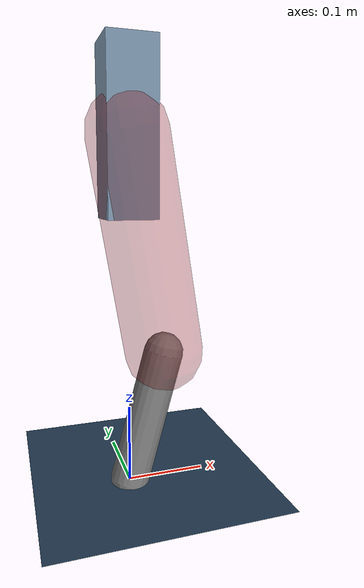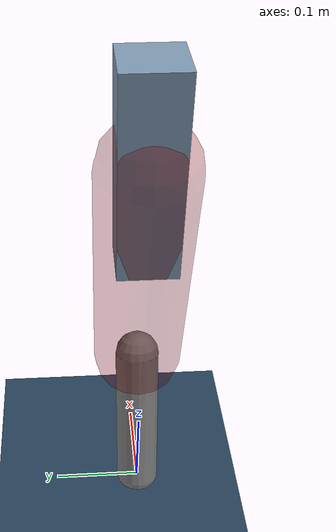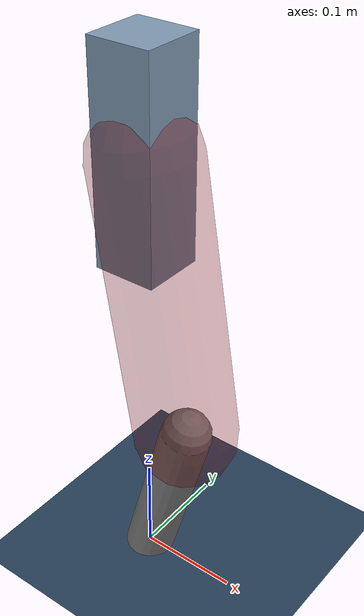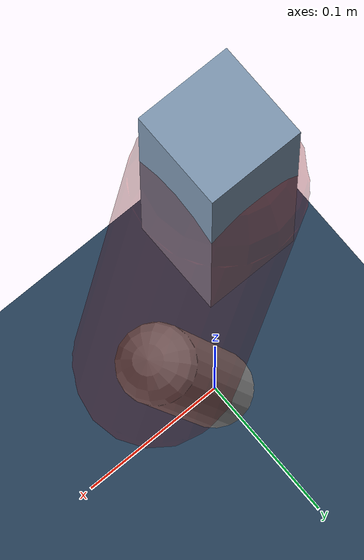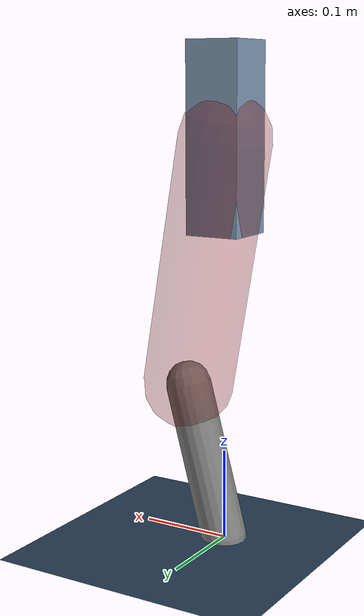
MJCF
<mujoco model="Hopper2D">
	<compiler inertiafromgeom="true" angle="radian" />
	<option timestep="0.001" integrator="implicit" cone="elliptic" solver="Newton" tolerance="1e-10" />

	<default>
		<geom contype="1" conaffinity="1" condim="3" friction="2 0.005 0.0001" solref="0.005 1" />
		<joint limited="true" damping="0.1" />
	</default>

	<asset>
		<texture name="skybox" type="skybox" builtin="gradient" rgb1=".4 .6 .8" rgb2="0 0 0" width="800" height="800" />
		<texture name="grid" type="2d" builtin="checker" rgb1=".1 .2 .3" rgb2=".2 .3 .4" width="300" height="300" mark="edge" markrgb=".2 .3 .4" />
		<material name="ground" texture="grid" texrepeat="1 1" texuniform="true" reflectance="0.1" />
		<material name="leg" rgba="0.5 0.6 0.7 1" />
	</asset>

	<worldbody>

		<geom name="floor" type="plane" size="5 5 0.25" material="ground" />

		<light directional="false" diffuse="0.8 0.8 0.8" specular="0.3 0.3 0.3" pos="0 0 2" dir="0 0 -1" />
		<light mode="targetbodycom" target="base" directional="false" diffuse="0.8 0.8 0.8" specular="0.3 0.3 0.3" pos="0 0 2" dir="0 0 -1" />

		<camera name="fixed" pos="0 -2 1" xyaxes="1 0 0 0 0 1" />
		<camera name="tracking" mode="trackcom" pos="0 -3 1" />

		<body name="root" pos="0 0 0.439589382855569">
			<joint name="slide_x" type="slide" axis="1 0 0" range="-100 100" />
			<joint name="slide_z" type="slide" axis="0 0 1" range="0 10" />

			<body name="base" pos="0 0 0">
				<geom name="torso" type="box" size="0.03 0.03 0.1" mass="3.128" material="leg" />

				<body name="link1" pos="0 0 0" euler="0 1.4013985234434172 0">
					<joint type="hinge" axis="0 -1 0" pos="0 0 0" name="hinge1" limited="true" range="-3.14 3.14" stiffness="0" damping="0.1" />
					<geom name="thigh" type="capsule" fromto="0 0 0 0.272886879902545 0 0" size="0.05" rgba="0.5 0 0 0.3" mass="0.9162945757368715" />

					<body name="link2" pos="0.272886879902545 0 0" euler="0 0.43278938074519707 0">
						<joint type="hinge" axis="0 -1 0" pos="0 0 0" name="hinge2" limited="true" range="-3.14 3.14" stiffness="0" damping="0.1" />
						<geom name="shank" type="capsule" fromto="0 0 0 0.17670250295302398 0 0" size="0.025" mass="0.38106200236241916" />

					</body>
				</body>
			</body>
		</body>
	</worldbody>

	<actuator>
		<motor name="torque1" joint="hinge1" ctrlrange="-171.6070521022529 171.6070521022529" ctrllimited="true" gear="1" />
		<motor name="torque2" joint="hinge2" ctrlrange="-93.57195225435535 93.57195225435535" ctrllimited="true" gear="1" />
	</actuator>
</mujoco>
